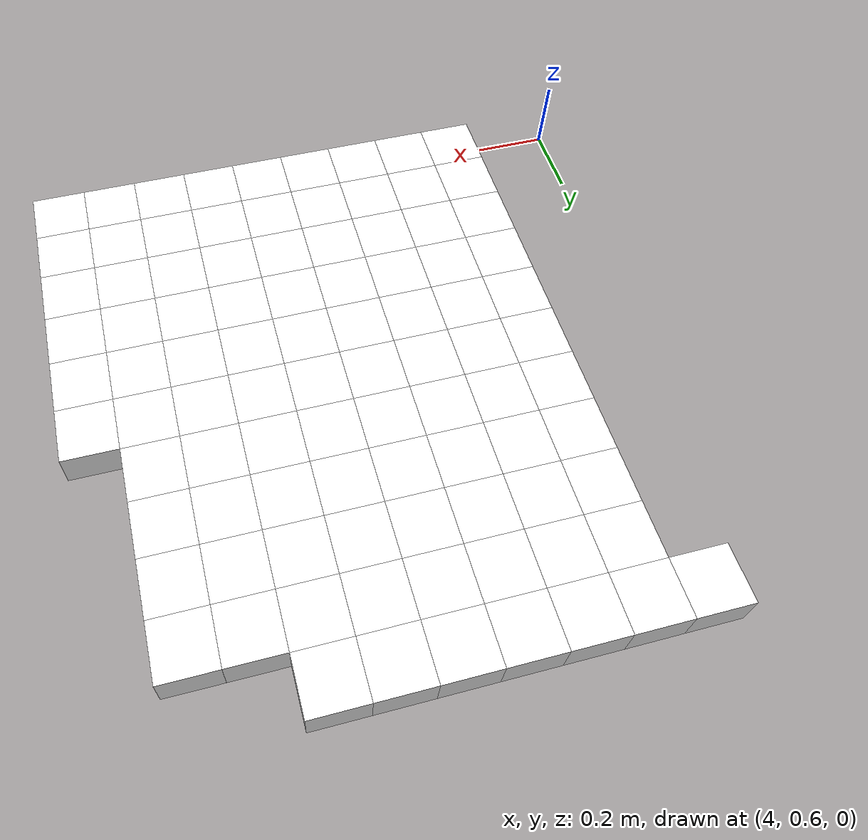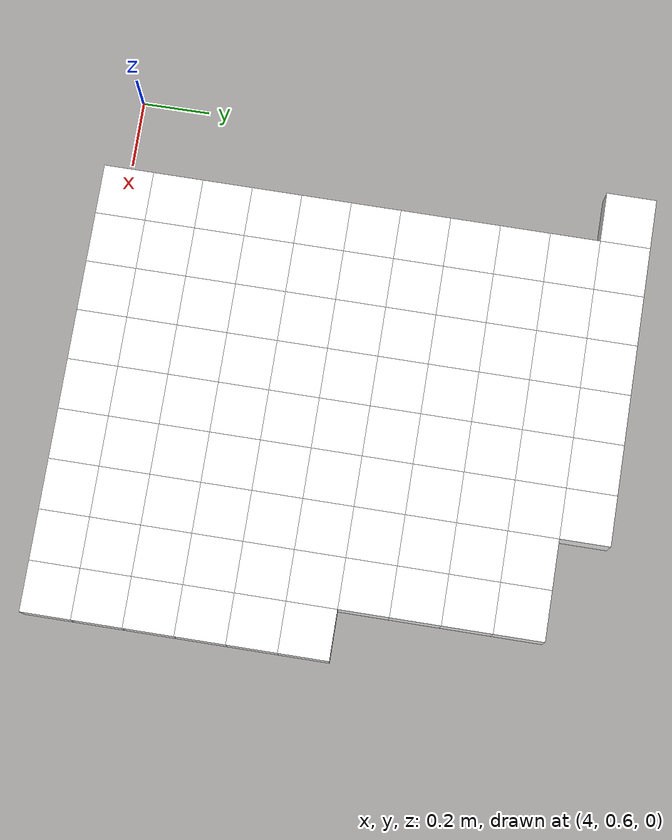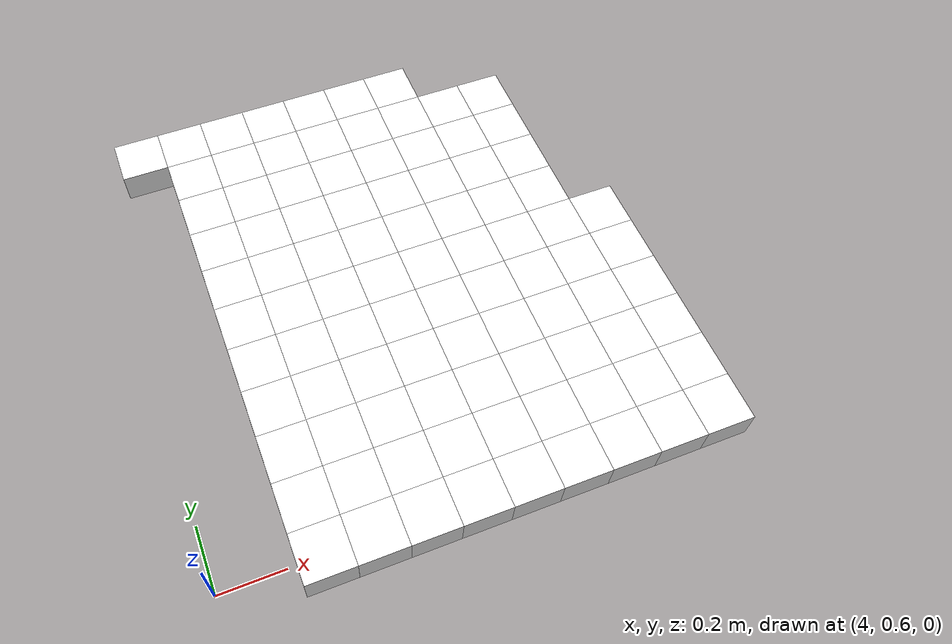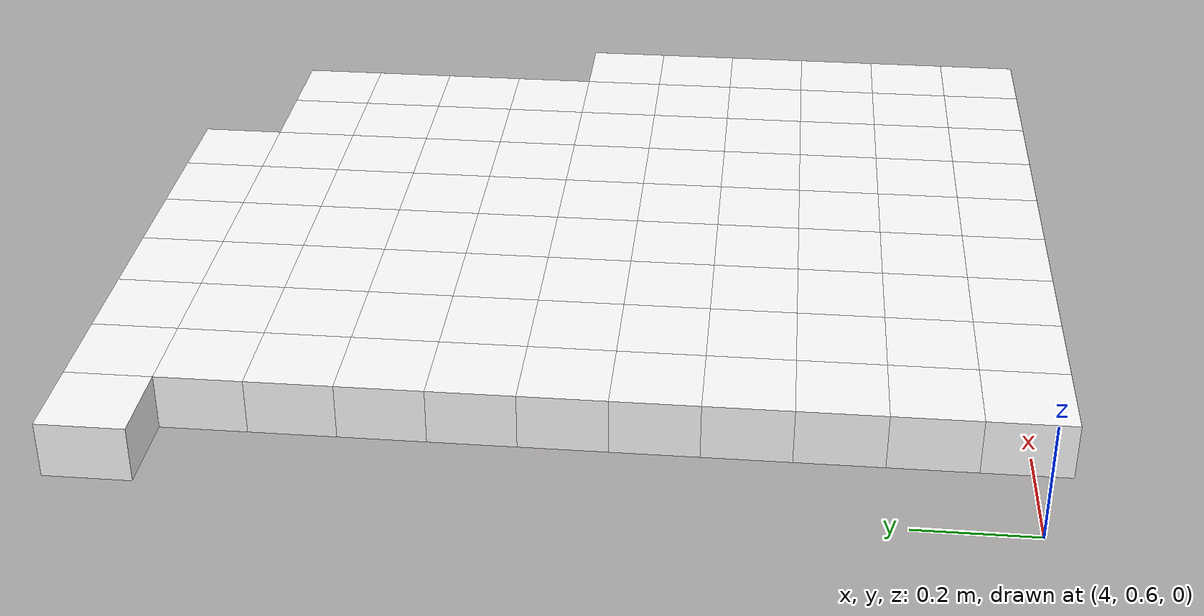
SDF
<sdf version="1.7">
 <world name="default">
  <include><uri>model://sun</uri></include>
  <model name="static_environment">
   <static>true</static>
   <link name="region_802">
    <pose>4.300000000000001 0.6 0.0 0.0 0.0 0.0</pose>
    <collision name="region_802_collision">
     <geometry><box><size>0.15 0.15 0.1</size></box></geometry>
     <surface><friction><ode><mu>1.0</mu><mu2>1.0</mu2></ode></friction></surface>
    </collision>
    <visual name="region_802_visual">
     <geometry><box><size>0.15 0.15 0.1</size></box></geometry>
     <material><ambient>1.0 1.0 1.0 1.0</ambient><diffuse>1.0 1.0 1.0 1.0</diffuse></material>
    </visual>
   </link>
   <link name="region_803">
    <pose>4.450000000000001 0.6 0.0 0.0 0.0 0.0</pose>
    <collision name="region_803_collision">
     <geometry><box><size>0.15 0.15 0.1</size></box></geometry>
     <surface><friction><ode><mu>1.0</mu><mu2>1.0</mu2></ode></friction></surface>
    </collision>
    <visual name="region_803_visual">
     <geometry><box><size>0.15 0.15 0.1</size></box></geometry>
     <material><ambient>1.0 1.0 1.0 1.0</ambient><diffuse>1.0 1.0 1.0 1.0</diffuse></material>
    </visual>
   </link>
   <link name="region_804">
    <pose>4.600000000000001 0.6 0.0 0.0 0.0 0.0</pose>
    <collision name="region_804_collision">
     <geometry><box><size>0.15 0.15 0.1</size></box></geometry>
     <surface><friction><ode><mu>1.0</mu><mu2>1.0</mu2></ode></friction></surface>
    </collision>
    <visual name="region_804_visual">
     <geometry><box><size>0.15 0.15 0.1</size></box></geometry>
     <material><ambient>1.0 1.0 1.0 1.0</ambient><diffuse>1.0 1.0 1.0 1.0</diffuse></material>
    </visual>
   </link>
   <link name="region_805">
    <pose>4.750000000000002 0.6 0.0 0.0 0.0 0.0</pose>
    <collision name="region_805_collision">
     <geometry><box><size>0.15 0.15 0.1</size></box></geometry>
     <surface><friction><ode><mu>1.0</mu><mu2>1.0</mu2></ode></friction></surface>
    </collision>
    <visual name="region_805_visual">
     <geometry><box><size>0.15 0.15 0.1</size></box></geometry>
     <material><ambient>1.0 1.0 1.0 1.0</ambient><diffuse>1.0 1.0 1.0 1.0</diffuse></material>
    </visual>
   </link>
   <link name="region_806">
    <pose>4.900000000000002 0.6 0.0 0.0 0.0 0.0</pose>
    <collision name="region_806_collision">
     <geometry><box><size>0.15 0.15 0.1</size></box></geometry>
     <surface><friction><ode><mu>1.0</mu><mu2>1.0</mu2></ode></friction></surface>
    </collision>
    <visual name="region_806_visual">
     <geometry><box><size>0.15 0.15 0.1</size></box></geometry>
     <material><ambient>1.0 1.0 1.0 1.0</ambient><diffuse>1.0 1.0 1.0 1.0</diffuse></material>
    </visual>
   </link>
   <link name="region_807">
    <pose>5.0500000000000025 0.6 0.0 0.0 0.0 0.0</pose>
    <collision name="region_807_collision">
     <geometry><box><size>0.15 0.15 0.1</size></box></geometry>
     <surface><friction><ode><mu>1.0</mu><mu2>1.0</mu2></ode></friction></surface>
    </collision>
    <visual name="region_807_visual">
     <geometry><box><size>0.15 0.15 0.1</size></box></geometry>
     <material><ambient>1.0 1.0 1.0 1.0</ambient><diffuse>1.0 1.0 1.0 1.0</diffuse></material>
    </visual>
   </link>
   <link name="region_808">
    <pose>5.200000000000003 0.6 0.0 0.0 0.0 0.0</pose>
    <collision name="region_808_collision">
     <geometry><box><size>0.15 0.15 0.1</size></box></geometry>
     <surface><friction><ode><mu>1.0</mu><mu2>1.0</mu2></ode></friction></surface>
    </collision>
    <visual name="region_808_visual">
     <geometry><box><size>0.15 0.15 0.1</size></box></geometry>
     <material><ambient>1.0 1.0 1.0 1.0</ambient><diffuse>1.0 1.0 1.0 1.0</diffuse></material>
    </visual>
   </link>
   <link name="region_809">
    <pose>5.350000000000003 0.6 0.0 0.0 0.0 0.0</pose>
    <collision name="region_809_collision">
     <geometry><box><size>0.15 0.15 0.1</size></box></geometry>
     <surface><friction><ode><mu>1.0</mu><mu2>1.0</mu2></ode></friction></surface>
    </collision>
    <visual name="region_809_visual">
     <geometry><box><size>0.15 0.15 0.1</size></box></geometry>
     <material><ambient>1.0 1.0 1.0 1.0</ambient><diffuse>1.0 1.0 1.0 1.0</diffuse></material>
    </visual>
   </link>
   <link name="region_810">
    <pose>5.5000000000000036 0.6 0.0 0.0 0.0 0.0</pose>
    <collision name="region_810_collision">
     <geometry><box><size>0.15 0.15 0.1</size></box></geometry>
     <surface><friction><ode><mu>1.0</mu><mu2>1.0</mu2></ode></friction></surface>
    </collision>
    <visual name="region_810_visual">
     <geometry><box><size>0.15 0.15 0.1</size></box></geometry>
     <material><ambient>1.0 1.0 1.0 1.0</ambient><diffuse>1.0 1.0 1.0 1.0</diffuse></material>
    </visual>
   </link>
   <link name="region_822">
    <pose>4.300000000000001 0.75 0.0 0.0 0.0 0.0</pose>
    <collision name="region_822_collision">
     <geometry><box><size>0.15 0.15 0.1</size></box></geometry>
     <surface><friction><ode><mu>1.0</mu><mu2>1.0</mu2></ode></friction></surface>
    </collision>
    <visual name="region_822_visual">
     <geometry><box><size>0.15 0.15 0.1</size></box></geometry>
     <material><ambient>1.0 1.0 1.0 1.0</ambient><diffuse>1.0 1.0 1.0 1.0</diffuse></material>
    </visual>
   </link>
   <link name="region_823">
    <pose>4.450000000000001 0.75 0.0 0.0 0.0 0.0</pose>
    <collision name="region_823_collision">
     <geometry><box><size>0.15 0.15 0.1</size></box></geometry>
     <surface><friction><ode><mu>1.0</mu><mu2>1.0</mu2></ode></friction></surface>
    </collision>
    <visual name="region_823_visual">
     <geometry><box><size>0.15 0.15 0.1</size></box></geometry>
     <material><ambient>1.0 1.0 1.0 1.0</ambient><diffuse>1.0 1.0 1.0 1.0</diffuse></material>
    </visual>
   </link>
   <link name="region_824">
    <pose>4.600000000000001 0.75 0.0 0.0 0.0 0.0</pose>
    <collision name="region_824_collision">
     <geometry><box><size>0.15 0.15 0.1</size></box></geometry>
     <surface><friction><ode><mu>1.0</mu><mu2>1.0</mu2></ode></friction></surface>
    </collision>
    <visual name="region_824_visual">
     <geometry><box><size>0.15 0.15 0.1</size></box></geometry>
     <material><ambient>1.0 1.0 1.0 1.0</ambient><diffuse>1.0 1.0 1.0 1.0</diffuse></material>
    </visual>
   </link>
   <link name="region_825">
    <pose>4.750000000000002 0.75 0.0 0.0 0.0 0.0</pose>
    <collision name="region_825_collision">
     <geometry><box><size>0.15 0.15 0.1</size></box></geometry>
     <surface><friction><ode><mu>1.0</mu><mu2>1.0</mu2></ode></friction></surface>
    </collision>
    <visual name="region_825_visual">
     <geometry><box><size>0.15 0.15 0.1</size></box></geometry>
     <material><ambient>1.0 1.0 1.0 1.0</ambient><diffuse>1.0 1.0 1.0 1.0</diffuse></material>
    </visual>
   </link>
   <link name="region_826">
    <pose>4.900000000000002 0.75 0.0 0.0 0.0 0.0</pose>
    <collision name="region_826_collision">
     <geometry><box><size>0.15 0.15 0.1</size></box></geometry>
     <surface><friction><ode><mu>1.0</mu><mu2>1.0</mu2></ode></friction></surface>
    </collision>
    <visual name="region_826_visual">
     <geometry><box><size>0.15 0.15 0.1</size></box></geometry>
     <material><ambient>1.0 1.0 1.0 1.0</ambient><diffuse>1.0 1.0 1.0 1.0</diffuse></material>
    </visual>
   </link>
   <link name="region_827">
    <pose>5.0500000000000025 0.75 0.0 0.0 0.0 0.0</pose>
    <collision name="region_827_collision">
     <geometry><box><size>0.15 0.15 0.1</size></box></geometry>
     <surface><friction><ode><mu>1.0</mu><mu2>1.0</mu2></ode></friction></surface>
    </collision>
    <visual name="region_827_visual">
     <geometry><box><size>0.15 0.15 0.1</size></box></geometry>
     <material><ambient>1.0 1.0 1.0 1.0</ambient><diffuse>1.0 1.0 1.0 1.0</diffuse></material>
    </visual>
   </link>
   <link name="region_828">
    <pose>5.200000000000003 0.75 0.0 0.0 0.0 0.0</pose>
    <collision name="region_828_collision">
     <geometry><box><size>0.15 0.15 0.1</size></box></geometry>
     <surface><friction><ode><mu>1.0</mu><mu2>1.0</mu2></ode></friction></surface>
    </collision>
    <visual name="region_828_visual">
     <geometry><box><size>0.15 0.15 0.1</size></box></geometry>
     <material><ambient>1.0 1.0 1.0 1.0</ambient><diffuse>1.0 1.0 1.0 1.0</diffuse></material>
    </visual>
   </link>
   <link name="region_829">
    <pose>5.350000000000003 0.75 0.0 0.0 0.0 0.0</pose>
    <collision name="region_829_collision">
     <geometry><box><size>0.15 0.15 0.1</size></box></geometry>
     <surface><friction><ode><mu>1.0</mu><mu2>1.0</mu2></ode></friction></surface>
    </collision>
    <visual name="region_829_visual">
     <geometry><box><size>0.15 0.15 0.1</size></box></geometry>
     <material><ambient>1.0 1.0 1.0 1.0</ambient><diffuse>1.0 1.0 1.0 1.0</diffuse></material>
    </visual>
   </link>
   <link name="region_830">
    <pose>5.5000000000000036 0.75 0.0 0.0 0.0 0.0</pose>
    <collision name="region_830_collision">
     <geometry><box><size>0.15 0.15 0.1</size></box></geometry>
     <surface><friction><ode><mu>1.0</mu><mu2>1.0</mu2></ode></friction></surface>
    </collision>
    <visual name="region_830_visual">
     <geometry><box><size>0.15 0.15 0.1</size></box></geometry>
     <material><ambient>1.0 1.0 1.0 1.0</ambient><diffuse>1.0 1.0 1.0 1.0</diffuse></material>
    </visual>
   </link>
   <link name="region_842">
    <pose>4.300000000000001 0.8999999999999999 0.0 0.0 0.0 0.0</pose>
    <collision name="region_842_collision">
     <geometry><box><size>0.15 0.15 0.1</size></box></geometry>
     <surface><friction><ode><mu>1.0</mu><mu2>1.0</mu2></ode></friction></surface>
    </collision>
    <visual name="region_842_visual">
     <geometry><box><size>0.15 0.15 0.1</size></box></geometry>
     <material><ambient>1.0 1.0 1.0 1.0</ambient><diffuse>1.0 1.0 1.0 1.0</diffuse></material>
    </visual>
   </link>
   <link name="region_843">
    <pose>4.450000000000001 0.8999999999999999 0.0 0.0 0.0 0.0</pose>
    <collision name="region_843_collision">
     <geometry><box><size>0.15 0.15 0.1</size></box></geometry>
     <surface><friction><ode><mu>1.0</mu><mu2>1.0</mu2></ode></friction></surface>
    </collision>
    <visual name="region_843_visual">
     <geometry><box><size>0.15 0.15 0.1</size></box></geometry>
     <material><ambient>1.0 1.0 1.0 1.0</ambient><diffuse>1.0 1.0 1.0 1.0</diffuse></material>
    </visual>
   </link>
   <link name="region_844">
    <pose>4.600000000000001 0.8999999999999999 0.0 0.0 0.0 0.0</pose>
    <collision name="region_844_collision">
     <geometry><box><size>0.15 0.15 0.1</size></box></geometry>
     <surface><friction><ode><mu>1.0</mu><mu2>1.0</mu2></ode></friction></surface>
    </collision>
    <visual name="region_844_visual">
     <geometry><box><size>0.15 0.15 0.1</size></box></geometry>
     <material><ambient>1.0 1.0 1.0 1.0</ambient><diffuse>1.0 1.0 1.0 1.0</diffuse></material>
    </visual>
   </link>
   <link name="region_845">
    <pose>4.750000000000002 0.8999999999999999 0.0 0.0 0.0 0.0</pose>
    <collision name="region_845_collision">
     <geometry><box><size>0.15 0.15 0.1</size></box></geometry>
     <surface><friction><ode><mu>1.0</mu><mu2>1.0</mu2></ode></friction></surface>
    </collision>
    <visual name="region_845_visual">
     <geometry><box><size>0.15 0.15 0.1</size></box></geometry>
     <material><ambient>1.0 1.0 1.0 1.0</ambient><diffuse>1.0 1.0 1.0 1.0</diffuse></material>
    </visual>
   </link>
   <link name="region_846">
    <pose>4.900000000000002 0.8999999999999999 0.0 0.0 0.0 0.0</pose>
    <collision name="region_846_collision">
     <geometry><box><size>0.15 0.15 0.1</size></box></geometry>
     <surface><friction><ode><mu>1.0</mu><mu2>1.0</mu2></ode></friction></surface>
    </collision>
    <visual name="region_846_visual">
     <geometry><box><size>0.15 0.15 0.1</size></box></geometry>
     <material><ambient>1.0 1.0 1.0 1.0</ambient><diffuse>1.0 1.0 1.0 1.0</diffuse></material>
    </visual>
   </link>
   <link name="region_847">
    <pose>5.0500000000000025 0.8999999999999999 0.0 0.0 0.0 0.0</pose>
    <collision name="region_847_collision">
     <geometry><box><size>0.15 0.15 0.1</size></box></geometry>
     <surface><friction><ode><mu>1.0</mu><mu2>1.0</mu2></ode></friction></surface>
    </collision>
    <visual name="region_847_visual">
     <geometry><box><size>0.15 0.15 0.1</size></box></geometry>
     <material><ambient>1.0 1.0 1.0 1.0</ambient><diffuse>1.0 1.0 1.0 1.0</diffuse></material>
    </visual>
   </link>
   <link name="region_848">
    <pose>5.200000000000003 0.8999999999999999 0.0 0.0 0.0 0.0</pose>
    <collision name="region_848_collision">
     <geometry><box><size>0.15 0.15 0.1</size></box></geometry>
     <surface><friction><ode><mu>1.0</mu><mu2>1.0</mu2></ode></friction></surface>
    </collision>
    <visual name="region_848_visual">
     <geometry><box><size>0.15 0.15 0.1</size></box></geometry>
     <material><ambient>1.0 1.0 1.0 1.0</ambient><diffuse>1.0 1.0 1.0 1.0</diffuse></material>
    </visual>
   </link>
   <link name="region_849">
    <pose>5.350000000000003 0.8999999999999999 0.0 0.0 0.0 0.0</pose>
    <collision name="region_849_collision">
     <geometry><box><size>0.15 0.15 0.1</size></box></geometry>
     <surface><friction><ode><mu>1.0</mu><mu2>1.0</mu2></ode></friction></surface>
    </collision>
    <visual name="region_849_visual">
     <geometry><box><size>0.15 0.15 0.1</size></box></geometry>
     <material><ambient>1.0 1.0 1.0 1.0</ambient><diffuse>1.0 1.0 1.0 1.0</diffuse></material>
    </visual>
   </link>
   <link name="region_850">
    <pose>5.5000000000000036 0.8999999999999999 0.0 0.0 0.0 0.0</pose>
    <collision name="region_850_collision">
     <geometry><box><size>0.15 0.15 0.1</size></box></geometry>
     <surface><friction><ode><mu>1.0</mu><mu2>1.0</mu2></ode></friction></surface>
    </collision>
    <visual name="region_850_visual">
     <geometry><box><size>0.15 0.15 0.1</size></box></geometry>
     <material><ambient>1.0 1.0 1.0 1.0</ambient><diffuse>1.0 1.0 1.0 1.0</diffuse></material>
    </visual>
   </link>
   <link name="region_862">
    <pose>4.300000000000001 1.0499999999999998 0.0 0.0 0.0 0.0</pose>
    <collision name="region_862_collision">
     <geometry><box><size>0.15 0.15 0.1</size></box></geometry>
     <surface><friction><ode><mu>1.0</mu><mu2>1.0</mu2></ode></friction></surface>
    </collision>
    <visual name="region_862_visual">
     <geometry><box><size>0.15 0.15 0.1</size></box></geometry>
     <material><ambient>1.0 1.0 1.0 1.0</ambient><diffuse>1.0 1.0 1.0 1.0</diffuse></material>
    </visual>
   </link>
   <link name="region_863">
    <pose>4.450000000000001 1.0499999999999998 0.0 0.0 0.0 0.0</pose>
    <collision name="region_863_collision">
     <geometry><box><size>0.15 0.15 0.1</size></box></geometry>
     <surface><friction><ode><mu>1.0</mu><mu2>1.0</mu2></ode></friction></surface>
    </collision>
    <visual name="region_863_visual">
     <geometry><box><size>0.15 0.15 0.1</size></box></geometry>
     <material><ambient>1.0 1.0 1.0 1.0</ambient><diffuse>1.0 1.0 1.0 1.0</diffuse></material>
    </visual>
   </link>
   <link name="region_864">
    <pose>4.600000000000001 1.0499999999999998 0.0 0.0 0.0 0.0</pose>
    <collision name="region_864_collision">
     <geometry><box><size>0.15 0.15 0.1</size></box></geometry>
     <surface><friction><ode><mu>1.0</mu><mu2>1.0</mu2></ode></friction></surface>
    </collision>
    <visual name="region_864_visual">
     <geometry><box><size>0.15 0.15 0.1</size></box></geometry>
     <material><ambient>1.0 1.0 1.0 1.0</ambient><diffuse>1.0 1.0 1.0 1.0</diffuse></material>
    </visual>
   </link>
   <link name="region_865">
    <pose>4.750000000000002 1.0499999999999998 0.0 0.0 0.0 0.0</pose>
    <collision name="region_865_collision">
     <geometry><box><size>0.15 0.15 0.1</size></box></geometry>
     <surface><friction><ode><mu>1.0</mu><mu2>1.0</mu2></ode></friction></surface>
    </collision>
    <visual name="region_865_visual">
     <geometry><box><size>0.15 0.15 0.1</size></box></geometry>
     <material><ambient>1.0 1.0 1.0 1.0</ambient><diffuse>1.0 1.0 1.0 1.0</diffuse></material>
    </visual>
   </link>
   <link name="region_866">
    <pose>4.900000000000002 1.0499999999999998 0.0 0.0 0.0 0.0</pose>
    <collision name="region_866_collision">
     <geometry><box><size>0.15 0.15 0.1</size></box></geometry>
     <surface><friction><ode><mu>1.0</mu><mu2>1.0</mu2></ode></friction></surface>
    </collision>
    <visual name="region_866_visual">
     <geometry><box><size>0.15 0.15 0.1</size></box></geometry>
     <material><ambient>1.0 1.0 1.0 1.0</ambient><diffuse>1.0 1.0 1.0 1.0</diffuse></material>
    </visual>
   </link>
   <link name="region_867">
    <pose>5.0500000000000025 1.0499999999999998 0.0 0.0 0.0 0.0</pose>
    <collision name="region_867_collision">
     <geometry><box><size>0.15 0.15 0.1</size></box></geometry>
     <surface><friction><ode><mu>1.0</mu><mu2>1.0</mu2></ode></friction></surface>
    </collision>
    <visual name="region_867_visual">
     <geometry><box><size>0.15 0.15 0.1</size></box></geometry>
     <material><ambient>1.0 1.0 1.0 1.0</ambient><diffuse>1.0 1.0 1.0 1.0</diffuse></material>
    </visual>
   </link>
   <link name="region_868">
    <pose>5.200000000000003 1.0499999999999998 0.0 0.0 0.0 0.0</pose>
    <collision name="region_868_collision">
     <geometry><box><size>0.15 0.15 0.1</size></box></geometry>
     <surface><friction><ode><mu>1.0</mu><mu2>1.0</mu2></ode></friction></surface>
    </collision>
    <visual name="region_868_visual">
     <geometry><box><size>0.15 0.15 0.1</size></box></geometry>
     <material><ambient>1.0 1.0 1.0 1.0</ambient><diffuse>1.0 1.0 1.0 1.0</diffuse></material>
    </visual>
   </link>
   <link name="region_869">
    <pose>5.350000000000003 1.0499999999999998 0.0 0.0 0.0 0.0</pose>
    <collision name="region_869_collision">
     <geometry><box><size>0.15 0.15 0.1</size></box></geometry>
     <surface><friction><ode><mu>1.0</mu><mu2>1.0</mu2></ode></friction></surface>
    </collision>
    <visual name="region_869_visual">
     <geometry><box><size>0.15 0.15 0.1</size></box></geometry>
     <material><ambient>1.0 1.0 1.0 1.0</ambient><diffuse>1.0 1.0 1.0 1.0</diffuse></material>
    </visual>
   </link>
   <link name="region_870">
    <pose>5.5000000000000036 1.0499999999999998 0.0 0.0 0.0 0.0</pose>
    <collision name="region_870_collision">
     <geometry><box><size>0.15 0.15 0.1</size></box></geometry>
     <surface><friction><ode><mu>1.0</mu><mu2>1.0</mu2></ode></friction></surface>
    </collision>
    <visual name="region_870_visual">
     <geometry><box><size>0.15 0.15 0.1</size></box></geometry>
     <material><ambient>1.0 1.0 1.0 1.0</ambient><diffuse>1.0 1.0 1.0 1.0</diffuse></material>
    </visual>
   </link>
   <link name="region_882">
    <pose>4.300000000000001 1.2 0.0 0.0 0.0 0.0</pose>
    <collision name="region_882_collision">
     <geometry><box><size>0.15 0.15 0.1</size></box></geometry>
     <surface><friction><ode><mu>1.0</mu><mu2>1.0</mu2></ode></friction></surface>
    </collision>
    <visual name="region_882_visual">
     <geometry><box><size>0.15 0.15 0.1</size></box></geometry>
     <material><ambient>1.0 1.0 1.0 1.0</ambient><diffuse>1.0 1.0 1.0 1.0</diffuse></material>
    </visual>
   </link>
   <link name="region_883">
    <pose>4.450000000000001 1.2 0.0 0.0 0.0 0.0</pose>
    <collision name="region_883_collision">
     <geometry><box><size>0.15 0.15 0.1</size></box></geometry>
     <surface><friction><ode><mu>1.0</mu><mu2>1.0</mu2></ode></friction></surface>
    </collision>
    <visual name="region_883_visual">
     <geometry><box><size>0.15 0.15 0.1</size></box></geometry>
     <material><ambient>1.0 1.0 1.0 1.0</ambient><diffuse>1.0 1.0 1.0 1.0</diffuse></material>
    </visual>
   </link>
   <link name="region_884">
    <pose>4.600000000000001 1.2 0.0 0.0 0.0 0.0</pose>
    <collision name="region_884_collision">
     <geometry><box><size>0.15 0.15 0.1</size></box></geometry>
     <surface><friction><ode><mu>1.0</mu><mu2>1.0</mu2></ode></friction></surface>
    </collision>
    <visual name="region_884_visual">
     <geometry><box><size>0.15 0.15 0.1</size></box></geometry>
     <material><ambient>1.0 1.0 1.0 1.0</ambient><diffuse>1.0 1.0 1.0 1.0</diffuse></material>
    </visual>
   </link>
   <link name="region_885">
    <pose>4.750000000000002 1.2 0.0 0.0 0.0 0.0</pose>
    <collision name="region_885_collision">
     <geometry><box><size>0.15 0.15 0.1</size></box></geometry>
     <surface><friction><ode><mu>1.0</mu><mu2>1.0</mu2></ode></friction></surface>
    </collision>
    <visual name="region_885_visual">
     <geometry><box><size>0.15 0.15 0.1</size></box></geometry>
     <material><ambient>1.0 1.0 1.0 1.0</ambient><diffuse>1.0 1.0 1.0 1.0</diffuse></material>
    </visual>
   </link>
   <link name="region_886">
    <pose>4.900000000000002 1.2 0.0 0.0 0.0 0.0</pose>
    <collision name="region_886_collision">
     <geometry><box><size>0.15 0.15 0.1</size></box></geometry>
     <surface><friction><ode><mu>1.0</mu><mu2>1.0</mu2></ode></friction></surface>
    </collision>
    <visual name="region_886_visual">
     <geometry><box><size>0.15 0.15 0.1</size></box></geometry>
     <material><ambient>1.0 1.0 1.0 1.0</ambient><diffuse>1.0 1.0 1.0 1.0</diffuse></material>
    </visual>
   </link>
   <link name="region_887">
    <pose>5.0500000000000025 1.2 0.0 0.0 0.0 0.0</pose>
    <collision name="region_887_collision">
     <geometry><box><size>0.15 0.15 0.1</size></box></geometry>
     <surface><friction><ode><mu>1.0</mu><mu2>1.0</mu2></ode></friction></surface>
    </collision>
    <visual name="region_887_visual">
     <geometry><box><size>0.15 0.15 0.1</size></box></geometry>
     <material><ambient>1.0 1.0 1.0 1.0</ambient><diffuse>1.0 1.0 1.0 1.0</diffuse></material>
    </visual>
   </link>
   <link name="region_888">
    <pose>5.200000000000003 1.2 0.0 0.0 0.0 0.0</pose>
    <collision name="region_888_collision">
     <geometry><box><size>0.15 0.15 0.1</size></box></geometry>
     <surface><friction><ode><mu>1.0</mu><mu2>1.0</mu2></ode></friction></surface>
    </collision>
    <visual name="region_888_visual">
     <geometry><box><size>0.15 0.15 0.1</size></box></geometry>
     <material><ambient>1.0 1.0 1.0 1.0</ambient><diffuse>1.0 1.0 1.0 1.0</diffuse></material>
    </visual>
   </link>
   <link name="region_889">
    <pose>5.350000000000003 1.2 0.0 0.0 0.0 0.0</pose>
    <collision name="region_889_collision">
     <geometry><box><size>0.15 0.15 0.1</size></box></geometry>
     <surface><friction><ode><mu>1.0</mu><mu2>1.0</mu2></ode></friction></surface>
    </collision>
    <visual name="region_889_visual">
     <geometry><box><size>0.15 0.15 0.1</size></box></geometry>
     <material><ambient>1.0 1.0 1.0 1.0</ambient><diffuse>1.0 1.0 1.0 1.0</diffuse></material>
    </visual>
   </link>
   <link name="region_890">
    <pose>5.5000000000000036 1.2 0.0 0.0 0.0 0.0</pose>
    <collision name="region_890_collision">
     <geometry><box><size>0.15 0.15 0.1</size></box></geometry>
     <surface><friction><ode><mu>1.0</mu><mu2>1.0</mu2></ode></friction></surface>
    </collision>
    <visual name="region_890_visual">
     <geometry><box><size>0.15 0.15 0.1</size></box></geometry>
     <material><ambient>1.0 1.0 1.0 1.0</ambient><diffuse>1.0 1.0 1.0 1.0</diffuse></material>
    </visual>
   </link>
   <link name="region_902">
    <pose>4.300000000000001 1.35 0.0 0.0 0.0 0.0</pose>
    <collision name="region_902_collision">
     <geometry><box><size>0.15 0.15 0.1</size></box></geometry>
     <surface><friction><ode><mu>1.0</mu><mu2>1.0</mu2></ode></friction></surface>
    </collision>
    <visual name="region_902_visual">
     <geometry><box><size>0.15 0.15 0.1</size></box></geometry>
     <material><ambient>1.0 1.0 1.0 1.0</ambient><diffuse>1.0 1.0 1.0 1.0</diffuse></material>
    </visual>
   </link>
   <link name="region_903">
    <pose>4.450000000000001 1.35 0.0 0.0 0.0 0.0</pose>
    <collision name="region_903_collision">
     <geometry><box><size>0.15 0.15 0.1</size></box></geometry>
     <surface><friction><ode><mu>1.0</mu><mu2>1.0</mu2></ode></friction></surface>
    </collision>
    <visual name="region_903_visual">
     <geometry><box><size>0.15 0.15 0.1</size></box></geometry>
     <material><ambient>1.0 1.0 1.0 1.0</ambient><diffuse>1.0 1.0 1.0 1.0</diffuse></material>
    </visual>
   </link>
   <link name="region_904">
    <pose>4.600000000000001 1.35 0.0 0.0 0.0 0.0</pose>
    <collision name="region_904_collision">
     <geometry><box><size>0.15 0.15 0.1</size></box></geometry>
     <surface><friction><ode><mu>1.0</mu><mu2>1.0</mu2></ode></friction></surface>
    </collision>
    <visual name="region_904_visual">
     <geometry><box><size>0.15 0.15 0.1</size></box></geometry>
     <material><ambient>1.0 1.0 1.0 1.0</ambient><diffuse>1.0 1.0 1.0 1.0</diffuse></material>
    </visual>
   </link>
   <link name="region_905">
    <pose>4.750000000000002 1.35 0.0 0.0 0.0 0.0</pose>
    <collision name="region_905_collision">
     <geometry><box><size>0.15 0.15 0.1</size></box></geometry>
     <surface><friction><ode><mu>1.0</mu><mu2>1.0</mu2></ode></friction></surface>
    </collision>
    <visual name="region_905_visual">
     <geometry><box><size>0.15 0.15 0.1</size></box></geometry>
     <material><ambient>1.0 1.0 1.0 1.0</ambient><diffuse>1.0 1.0 1.0 1.0</diffuse></material>
    </visual>
   </link>
   <link name="region_906">
    <pose>4.900000000000002 1.35 0.0 0.0 0.0 0.0</pose>
    <collision name="region_906_collision">
     <geometry><box><size>0.15 0.15 0.1</size></box></geometry>
     <surface><friction><ode><mu>1.0</mu><mu2>1.0</mu2></ode></friction></surface>
    </collision>
    <visual name="region_906_visual">
     <geometry><box><size>0.15 0.15 0.1</size></box></geometry>
     <material><ambient>1.0 1.0 1.0 1.0</ambient><diffuse>1.0 1.0 1.0 1.0</diffuse></material>
    </visual>
   </link>
   <link name="region_907">
    <pose>5.0500000000000025 1.35 0.0 0.0 0.0 0.0</pose>
    <collision name="region_907_collision">
     <geometry><box><size>0.15 0.15 0.1</size></box></geometry>
     <surface><friction><ode><mu>1.0</mu><mu2>1.0</mu2></ode></friction></surface>
    </collision>
    <visual name="region_907_visual">
     <geometry><box><size>0.15 0.15 0.1</size></box></geometry>
     <material><ambient>1.0 1.0 1.0 1.0</ambient><diffuse>1.0 1.0 1.0 1.0</diffuse></material>
    </visual>
   </link>
   <link name="region_908">
    <pose>5.200000000000003 1.35 0.0 0.0 0.0 0.0</pose>
    <collision name="region_908_collision">
     <geometry><box><size>0.15 0.15 0.1</size></box></geometry>
     <surface><friction><ode><mu>1.0</mu><mu2>1.0</mu2></ode></friction></surface>
    </collision>
    <visual name="region_908_visual">
     <geometry><box><size>0.15 0.15 0.1</size></box></geometry>
     <material><ambient>1.0 1.0 1.0 1.0</ambient><diffuse>1.0 1.0 1.0 1.0</diffuse></material>
    </visual>
   </link>
   <link name="region_909">
    <pose>5.350000000000003 1.35 0.0 0.0 0.0 0.0</pose>
    <collision name="region_909_collision">
     <geometry><box><size>0.15 0.15 0.1</size></box></geometry>
     <surface><friction><ode><mu>1.0</mu><mu2>1.0</mu2></ode></friction></surface>
    </collision>
    <visual name="region_909_visual">
     <geometry><box><size>0.15 0.15 0.1</size></box></geometry>
     <material><ambient>1.0 1.0 1.0 1.0</ambient><diffuse>1.0 1.0 1.0 1.0</diffuse></material>
    </visual>
   </link>
   <link name="region_910">
    <pose>5.5000000000000036 1.35 0.0 0.0 0.0 0.0</pose>
    <collision name="region_910_collision">
     <geometry><box><size>0.15 0.15 0.1</size></box></geometry>
     <surface><friction><ode><mu>1.0</mu><mu2>1.0</mu2></ode></friction></surface>
    </collision>
    <visual name="region_910_visual">
     <geometry><box><size>0.15 0.15 0.1</size></box></geometry>
     <material><ambient>1.0 1.0 1.0 1.0</ambient><diffuse>1.0 1.0 1.0 1.0</diffuse></material>
    </visual>
   </link>
   <link name="region_922">
    <pose>4.300000000000001 1.5 0.0 0.0 0.0 0.0</pose>
    <collision name="region_922_collision">
     <geometry><box><size>0.15 0.15 0.1</size></box></geometry>
     <surface><friction><ode><mu>1.0</mu><mu2>1.0</mu2></ode></friction></surface>
    </collision>
    <visual name="region_922_visual">
     <geometry><box><size>0.15 0.15 0.1</size></box></geometry>
     <material><ambient>1.0 1.0 1.0 1.0</ambient><diffuse>1.0 1.0 1.0 1.0</diffuse></material>
    </visual>
   </link>
   <link name="region_923">
    <pose>4.450000000000001 1.5 0.0 0.0 0.0 0.0</pose>
    <collision name="region_923_collision">
     <geometry><box><size>0.15 0.15 0.1</size></box></geometry>
     <surface><friction><ode><mu>1.0</mu><mu2>1.0</mu2></ode></friction></surface>
    </collision>
    <visual name="region_923_visual">
     <geometry><box><size>0.15 0.15 0.1</size></box></geometry>
     <material><ambient>1.0 1.0 1.0 1.0</ambient><diffuse>1.0 1.0 1.0 1.0</diffuse></material>
    </visual>
   </link>
   <link name="region_924">
    <pose>4.600000000000001 1.5 0.0 0.0 0.0 0.0</pose>
    <collision name="region_924_collision">
     <geometry><box><size>0.15 0.15 0.1</size></box></geometry>
     <surface><friction><ode><mu>1.0</mu><mu2>1.0</mu2></ode></friction></surface>
    </collision>
    <visual name="region_924_visual">
     <geometry><box><size>0.15 0.15 0.1</size></box></geometry>
     <material><ambient>1.0 1.0 1.0 1.0</ambient><diffuse>1.0 1.0 1.0 1.0</diffuse></material>
    </visual>
   </link>
   <link name="region_925">
    <pose>4.750000000000002 1.5 0.0 0.0 0.0 0.0</pose>
    <collision name="region_925_collision">
     <geometry><box><size>0.15 0.15 0.1</size></box></geometry>
     <surface><friction><ode><mu>1.0</mu><mu2>1.0</mu2></ode></friction></surface>
    </collision>
    <visual name="region_925_visual">
     <geometry><box><size>0.15 0.15 0.1</size></box></geometry>
     <material><ambient>1.0 1.0 1.0 1.0</ambient><diffuse>1.0 1.0 1.0 1.0</diffuse></material>
    </visual>
   </link>
   <link name="region_926">
    <pose>4.900000000000002 1.5 0.0 0.0 0.0 0.0</pose>
    <collision name="region_926_collision">
     <geometry><box><size>0.15 0.15 0.1</size></box></geometry>
     <surface><friction><ode><mu>1.0</mu><mu2>1.0</mu2></ode></friction></surface>
    </collision>
    <visual name="region_926_visual">
     <geometry><box><size>0.15 0.15 0.1</size></box></geometry>
     <material><ambient>1.0 1.0 1.0 1.0</ambient><diffuse>1.0 1.0 1.0 1.0</diffuse></material>
    </visual>
   </link>
   <link name="region_927">
    <pose>5.0500000000000025 1.5 0.0 0.0 0.0 0.0</pose>
    <collision name="region_927_collision">
     <geometry><box><size>0.15 0.15 0.1</size></box></geometry>
     <surface><friction><ode><mu>1.0</mu><mu2>1.0</mu2></ode></friction></surface>
    </collision>
    <visual name="region_927_visual">
     <geometry><box><size>0.15 0.15 0.1</size></box></geometry>
     <material><ambient>1.0 1.0 1.0 1.0</ambient><diffuse>1.0 1.0 1.0 1.0</diffuse></material>
    </visual>
   </link>
   <link name="region_928">
    <pose>5.200000000000003 1.5 0.0 0.0 0.0 0.0</pose>
    <collision name="region_928_collision">
     <geometry><box><size>0.15 0.15 0.1</size></box></geometry>
     <surface><friction><ode><mu>1.0</mu><mu2>1.0</mu2></ode></friction></surface>
    </collision>
    <visual name="region_928_visual">
     <geometry><box><size>0.15 0.15 0.1</size></box></geometry>
     <material><ambient>1.0 1.0 1.0 1.0</ambient><diffuse>1.0 1.0 1.0 1.0</diffuse></material>
    </visual>
   </link>
   <link name="region_929">
    <pose>5.350000000000003 1.5 0.0 0.0 0.0 0.0</pose>
    <collision name="region_929_collision">
     <geometry><box><size>0.15 0.15 0.1</size></box></geometry>
     <surface><friction><ode><mu>1.0</mu><mu2>1.0</mu2></ode></friction></surface>
    </collision>
    <visual name="region_929_visual">
     <geometry><box><size>0.15 0.15 0.1</size></box></geometry>
     <material><ambient>1.0 1.0 1.0 1.0</ambient><diffuse>1.0 1.0 1.0 1.0</diffuse></material>
    </visual>
   </link>
   <link name="region_942">
    <pose>4.300000000000001 1.65 0.0 0.0 0.0 0.0</pose>
    <collision name="region_942_collision">
     <geometry><box><size>0.15 0.15 0.1</size></box></geometry>
     <surface><friction><ode><mu>1.0</mu><mu2>1.0</mu2></ode></friction></surface>
    </collision>
    <visual name="region_942_visual">
     <geometry><box><size>0.15 0.15 0.1</size></box></geometry>
     <material><ambient>1.0 1.0 1.0 1.0</ambient><diffuse>1.0 1.0 1.0 1.0</diffuse></material>
    </visual>
   </link>
   <link name="region_943">
    <pose>4.450000000000001 1.65 0.0 0.0 0.0 0.0</pose>
    <collision name="region_943_collision">
     <geometry><box><size>0.15 0.15 0.1</size></box></geometry>
     <surface><friction><ode><mu>1.0</mu><mu2>1.0</mu2></ode></friction></surface>
    </collision>
    <visual name="region_943_visual">
     <geometry><box><size>0.15 0.15 0.1</size></box></geometry>
     <material><ambient>1.0 1.0 1.0 1.0</ambient><diffuse>1.0 1.0 1.0 1.0</diffuse></material>
    </visual>
   </link>
   <link name="region_944">
    <pose>4.600000000000001 1.65 0.0 0.0 0.0 0.0</pose>
    <collision name="region_944_collision">
     <geometry><box><size>0.15 0.15 0.1</size></box></geometry>
     <surface><friction><ode><mu>1.0</mu><mu2>1.0</mu2></ode></friction></surface>
    </collision>
    <visual name="region_944_visual">
     <geometry><box><size>0.15 0.15 0.1</size></box></geometry>
     <material><ambient>1.0 1.0 1.0 1.0</ambient><diffuse>1.0 1.0 1.0 1.0</diffuse></material>
    </visual>
   </link>
   <link name="region_945">
    <pose>4.750000000000002 1.65 0.0 0.0 0.0 0.0</pose>
    <collision name="region_945_collision">
     <geometry><box><size>0.15 0.15 0.1</size></box></geometry>
     <surface><friction><ode><mu>1.0</mu><mu2>1.0</mu2></ode></friction></surface>
    </collision>
    <visual name="region_945_visual">
     <geometry><box><size>0.15 0.15 0.1</size></box></geometry>
     <material><ambient>1.0 1.0 1.0 1.0</ambient><diffuse>1.0 1.0 1.0 1.0</diffuse></material>
    </visual>
   </link>
   <link name="region_946">
    <pose>4.900000000000002 1.65 0.0 0.0 0.0 0.0</pose>
    <collision name="region_946_collision">
     <geometry><box><size>0.15 0.15 0.1</size></box></geometry>
     <surface><friction><ode><mu>1.0</mu><mu2>1.0</mu2></ode></friction></surface>
    </collision>
    <visual name="region_946_visual">
     <geometry><box><size>0.15 0.15 0.1</size></box></geometry>
     <material><ambient>1.0 1.0 1.0 1.0</ambient><diffuse>1.0 1.0 1.0 1.0</diffuse></material>
    </visual>
   </link>
   <link name="region_947">
    <pose>5.0500000000000025 1.65 0.0 0.0 0.0 0.0</pose>
    <collision name="region_947_collision">
     <geometry><box><size>0.15 0.15 0.1</size></box></geometry>
     <surface><friction><ode><mu>1.0</mu><mu2>1.0</mu2></ode></friction></surface>
    </collision>
    <visual name="region_947_visual">
     <geometry><box><size>0.15 0.15 0.1</size></box></geometry>
     <material><ambient>1.0 1.0 1.0 1.0</ambient><diffuse>1.0 1.0 1.0 1.0</diffuse></material>
    </visual>
   </link>
   <link name="region_948">
    <pose>5.200000000000003 1.65 0.0 0.0 0.0 0.0</pose>
    <collision name="region_948_collision">
     <geometry><box><size>0.15 0.15 0.1</size></box></geometry>
     <surface><friction><ode><mu>1.0</mu><mu2>1.0</mu2></ode></friction></surface>
    </collision>
    <visual name="region_948_visual">
     <geometry><box><size>0.15 0.15 0.1</size></box></geometry>
     <material><ambient>1.0 1.0 1.0 1.0</ambient><diffuse>1.0 1.0 1.0 1.0</diffuse></material>
    </visual>
   </link>
   <link name="region_949">
    <pose>5.350000000000003 1.65 0.0 0.0 0.0 0.0</pose>
    <collision name="region_949_collision">
     <geometry><box><size>0.15 0.15 0.1</size></box></geometry>
     <surface><friction><ode><mu>1.0</mu><mu2>1.0</mu2></ode></friction></surface>
    </collision>
    <visual name="region_949_visual">
     <geometry><box><size>0.15 0.15 0.1</size></box></geometry>
     <material><ambient>1.0 1.0 1.0 1.0</ambient><diffuse>1.0 1.0 1.0 1.0</diffuse></material>
    </visual>
   </link>
   <link name="region_962">
    <pose>4.300000000000001 1.7999999999999998 0.0 0.0 0.0 0.0</pose>
    <collision name="region_962_collision">
     <geometry><box><size>0.15 0.15 0.1</size></box></geometry>
     <surface><friction><ode><mu>1.0</mu><mu2>1.0</mu2></ode></friction></surface>
    </collision>
    <visual name="region_962_visual">
     <geometry><box><size>0.15 0.15 0.1</size></box></geometry>
     <material><ambient>1.0 1.0 1.0 1.0</ambient><diffuse>1.0 1.0 1.0 1.0</diffuse></material>
    </visual>
   </link>
   <link name="region_963">
    <pose>4.450000000000001 1.7999999999999998 0.0 0.0 0.0 0.0</pose>
    <collision name="region_963_collision">
     <geometry><box><size>0.15 0.15 0.1</size></box></geometry>
     <surface><friction><ode><mu>1.0</mu><mu2>1.0</mu2></ode></friction></surface>
    </collision>
    <visual name="region_963_visual">
     <geometry><box><size>0.15 0.15 0.1</size></box></geometry>
     <material><ambient>1.0 1.0 1.0 1.0</ambient><diffuse>1.0 1.0 1.0 1.0</diffuse></material>
    </visual>
   </link>
   <link name="region_964">
    <pose>4.600000000000001 1.7999999999999998 0.0 0.0 0.0 0.0</pose>
    <collision name="region_964_collision">
     <geometry><box><size>0.15 0.15 0.1</size></box></geometry>
     <surface><friction><ode><mu>1.0</mu><mu2>1.0</mu2></ode></friction></surface>
    </collision>
    <visual name="region_964_visual">
     <geometry><box><size>0.15 0.15 0.1</size></box></geometry>
     <material><ambient>1.0 1.0 1.0 1.0</ambient><diffuse>1.0 1.0 1.0 1.0</diffuse></material>
    </visual>
   </link>
   <link name="region_965">
    <pose>4.750000000000002 1.7999999999999998 0.0 0.0 0.0 0.0</pose>
    <collision name="region_965_collision">
     <geometry><box><size>0.15 0.15 0.1</size></box></geometry>
     <surface><friction><ode><mu>1.0</mu><mu2>1.0</mu2></ode></friction></surface>
    </collision>
    <visual name="region_965_visual">
     <geometry><box><size>0.15 0.15 0.1</size></box></geometry>
     <material><ambient>1.0 1.0 1.0 1.0</ambient><diffuse>1.0 1.0 1.0 1.0</diffuse></material>
    </visual>
   </link>
   <link name="region_966">
    <pose>4.900000000000002 1.7999999999999998 0.0 0.0 0.0 0.0</pose>
    <collision name="region_966_collision">
     <geometry><box><size>0.15 0.15 0.1</size></box></geometry>
     <surface><friction><ode><mu>1.0</mu><mu2>1.0</mu2></ode></friction></surface>
    </collision>
    <visual name="region_966_visual">
     <geometry><box><size>0.15 0.15 0.1</size></box></geometry>
     <material><ambient>1.0 1.0 1.0 1.0</ambient><diffuse>1.0 1.0 1.0 1.0</diffuse></material>
    </visual>
   </link>
   <link name="region_967">
    <pose>5.0500000000000025 1.7999999999999998 0.0 0.0 0.0 0.0</pose>
    <collision name="region_967_collision">
     <geometry><box><size>0.15 0.15 0.1</size></box></geometry>
     <surface><friction><ode><mu>1.0</mu><mu2>1.0</mu2></ode></friction></surface>
    </collision>
    <visual name="region_967_visual">
     <geometry><box><size>0.15 0.15 0.1</size></box></geometry>
     <material><ambient>1.0 1.0 1.0 1.0</ambient><diffuse>1.0 1.0 1.0 1.0</diffuse></material>
    </visual>
   </link>
   <link name="region_968">
    <pose>5.200000000000003 1.7999999999999998 0.0 0.0 0.0 0.0</pose>
    <collision name="region_968_collision">
     <geometry><box><size>0.15 0.15 0.1</size></box></geometry>
     <surface><friction><ode><mu>1.0</mu><mu2>1.0</mu2></ode></friction></surface>
    </collision>
    <visual name="region_968_visual">
     <geometry><box><size>0.15 0.15 0.1</size></box></geometry>
     <material><ambient>1.0 1.0 1.0 1.0</ambient><diffuse>1.0 1.0 1.0 1.0</diffuse></material>
    </visual>
   </link>
   <link name="region_969">
    <pose>5.350000000000003 1.7999999999999998 0.0 0.0 0.0 0.0</pose>
    <collision name="region_969_collision">
     <geometry><box><size>0.15 0.15 0.1</size></box></geometry>
     <surface><friction><ode><mu>1.0</mu><mu2>1.0</mu2></ode></friction></surface>
    </collision>
    <visual name="region_969_visual">
     <geometry><box><size>0.15 0.15 0.1</size></box></geometry>
     <material><ambient>1.0 1.0 1.0 1.0</ambient><diffuse>1.0 1.0 1.0 1.0</diffuse></material>
    </visual>
   </link>
   <link name="region_982">
    <pose>4.300000000000001 1.9499999999999997 0.0 0.0 0.0 0.0</pose>
    <collision name="region_982_collision">
     <geometry><box><size>0.15 0.15 0.1</size></box></geometry>
     <surface><friction><ode><mu>1.0</mu><mu2>1.0</mu2></ode></friction></surface>
    </collision>
    <visual name="region_982_visual">
     <geometry><box><size>0.15 0.15 0.1</size></box></geometry>
     <material><ambient>1.0 1.0 1.0 1.0</ambient><diffuse>1.0 1.0 1.0 1.0</diffuse></material>
    </visual>
   </link>
   <link name="region_983">
    <pose>4.450000000000001 1.9499999999999997 0.0 0.0 0.0 0.0</pose>
    <collision name="region_983_collision">
     <geometry><box><size>0.15 0.15 0.1</size></box></geometry>
     <surface><friction><ode><mu>1.0</mu><mu2>1.0</mu2></ode></friction></surface>
    </collision>
    <visual name="region_983_visual">
     <geometry><box><size>0.15 0.15 0.1</size></box></geometry>
     <material><ambient>1.0 1.0 1.0 1.0</ambient><diffuse>1.0 1.0 1.0 1.0</diffuse></material>
    </visual>
   </link>
   <link name="region_984">
    <pose>4.600000000000001 1.9499999999999997 0.0 0.0 0.0 0.0</pose>
    <collision name="region_984_collision">
     <geometry><box><size>0.15 0.15 0.1</size></box></geometry>
     <surface><friction><ode><mu>1.0</mu><mu2>1.0</mu2></ode></friction></surface>
    </collision>
    <visual name="region_984_visual">
     <geometry><box><size>0.15 0.15 0.1</size></box></geometry>
     <material><ambient>1.0 1.0 1.0 1.0</ambient><diffuse>1.0 1.0 1.0 1.0</diffuse></material>
    </visual>
   </link>
   <link name="region_985">
    <pose>4.750000000000002 1.9499999999999997 0.0 0.0 0.0 0.0</pose>
    <collision name="region_985_collision">
     <geometry><box><size>0.15 0.15 0.1</size></box></geometry>
     <surface><friction><ode><mu>1.0</mu><mu2>1.0</mu2></ode></friction></surface>
    </collision>
    <visual name="region_985_visual">
     <geometry><box><size>0.15 0.15 0.1</size></box></geometry>
     <material><ambient>1.0 1.0 1.0 1.0</ambient><diffuse>1.0 1.0 1.0 1.0</diffuse></material>
    </visual>
   </link>
   <link name="region_986">
    <pose>4.900000000000002 1.9499999999999997 0.0 0.0 0.0 0.0</pose>
    <collision name="region_986_collision">
     <geometry><box><size>0.15 0.15 0.1</size></box></geometry>
     <surface><friction><ode><mu>1.0</mu><mu2>1.0</mu2></ode></friction></surface>
    </collision>
    <visual name="region_986_visual">
     <geometry><box><size>0.15 0.15 0.1</size></box></geometry>
     <material><ambient>1.0 1.0 1.0 1.0</ambient><diffuse>1.0 1.0 1.0 1.0</diffuse></material>
    </visual>
   </link>
   <link name="region_987">
    <pose>5.0500000000000025 1.9499999999999997 0.0 0.0 0.0 0.0</pose>
    <collision name="region_987_collision">
     <geometry><box><size>0.15 0.15 0.1</size></box></geometry>
     <surface><friction><ode><mu>1.0</mu><mu2>1.0</mu2></ode></friction></surface>
    </collision>
    <visual name="region_987_visual">
     <geometry><box><size>0.15 0.15 0.1</size></box></geometry>
     <material><ambient>1.0 1.0 1.0 1.0</ambient><diffuse>1.0 1.0 1.0 1.0</diffuse></material>
    </visual>
   </link>
   <link name="region_988">
    <pose>5.200000000000003 1.9499999999999997 0.0 0.0 0.0 0.0</pose>
    <collision name="region_988_collision">
     <geometry><box><size>0.15 0.15 0.1</size></box></geometry>
     <surface><friction><ode><mu>1.0</mu><mu2>1.0</mu2></ode></friction></surface>
    </collision>
    <visual name="region_988_visual">
     <geometry><box><size>0.15 0.15 0.1</size></box></geometry>
     <material><ambient>1.0 1.0 1.0 1.0</ambient><diffuse>1.0 1.0 1.0 1.0</diffuse></material>
    </visual>
   </link>
   <link name="region_989">
    <pose>5.350000000000003 1.9499999999999997 0.0 0.0 0.0 0.0</pose>
    <collision name="region_989_collision">
     <geometry><box><size>0.15 0.15 0.1</size></box></geometry>
     <surface><friction><ode><mu>1.0</mu><mu2>1.0</mu2></ode></friction></surface>
    </collision>
    <visual name="region_989_visual">
     <geometry><box><size>0.15 0.15 0.1</size></box></geometry>
     <material><ambient>1.0 1.0 1.0 1.0</ambient><diffuse>1.0 1.0 1.0 1.0</diffuse></material>
    </visual>
   </link>
   <link name="region_1001">
    <pose>4.15 2.0999999999999996 0.0 0.0 0.0 0.0</pose>
    <collision name="region_1001_collision">
     <geometry><box><size>0.15 0.15 0.1</size></box></geometry>
     <surface><friction><ode><mu>1.0</mu><mu2>1.0</mu2></ode></friction></surface>
    </collision>
    <visual name="region_1001_visual">
     <geometry><box><size>0.15 0.15 0.1</size></box></geometry>
     <material><ambient>1.0 1.0 1.0 1.0</ambient><diffuse>1.0 1.0 1.0 1.0</diffuse></material>
    </visual>
   </link>
   <link name="region_1002">
    <pose>4.300000000000001 2.0999999999999996 0.0 0.0 0.0 0.0</pose>
    <collision name="region_1002_collision">
     <geometry><box><size>0.15 0.15 0.1</size></box></geometry>
     <surface><friction><ode><mu>1.0</mu><mu2>1.0</mu2></ode></friction></surface>
    </collision>
    <visual name="region_1002_visual">
     <geometry><box><size>0.15 0.15 0.1</size></box></geometry>
     <material><ambient>1.0 1.0 1.0 1.0</ambient><diffuse>1.0 1.0 1.0 1.0</diffuse></material>
    </visual>
   </link>
   <link name="region_1003">
    <pose>4.450000000000001 2.0999999999999996 0.0 0.0 0.0 0.0</pose>
    <collision name="region_1003_collision">
     <geometry><box><size>0.15 0.15 0.1</size></box></geometry>
     <surface><friction><ode><mu>1.0</mu><mu2>1.0</mu2></ode></friction></surface>
    </collision>
    <visual name="region_1003_visual">
     <geometry><box><size>0.15 0.15 0.1</size></box></geometry>
     <material><ambient>1.0 1.0 1.0 1.0</ambient><diffuse>1.0 1.0 1.0 1.0</diffuse></material>
    </visual>
   </link>
   <link name="region_1004">
    <pose>4.600000000000001 2.0999999999999996 0.0 0.0 0.0 0.0</pose>
    <collision name="region_1004_collision">
     <geometry><box><size>0.15 0.15 0.1</size></box></geometry>
     <surface><friction><ode><mu>1.0</mu><mu2>1.0</mu2></ode></friction></surface>
    </collision>
    <visual name="region_1004_visual">
     <geometry><box><size>0.15 0.15 0.1</size></box></geometry>
     <material><ambient>1.0 1.0 1.0 1.0</ambient><diffuse>1.0 1.0 1.0 1.0</diffuse></material>
    </visual>
   </link>
   <link name="region_1005">
    <pose>4.750000000000002 2.0999999999999996 0.0 0.0 0.0 0.0</pose>
    <collision name="region_1005_collision">
     <geometry><box><size>0.15 0.15 0.1</size></box></geometry>
     <surface><friction><ode><mu>1.0</mu><mu2>1.0</mu2></ode></friction></surface>
    </collision>
    <visual name="region_1005_visual">
     <geometry><box><size>0.15 0.15 0.1</size></box></geometry>
     <material><ambient>1.0 1.0 1.0 1.0</ambient><diffuse>1.0 1.0 1.0 1.0</diffuse></material>
    </visual>
   </link>
   <link name="region_1006">
    <pose>4.900000000000002 2.0999999999999996 0.0 0.0 0.0 0.0</pose>
    <collision name="region_1006_collision">
     <geometry><box><size>0.15 0.15 0.1</size></box></geometry>
     <surface><friction><ode><mu>1.0</mu><mu2>1.0</mu2></ode></friction></surface>
    </collision>
    <visual name="region_1006_visual">
     <geometry><box><size>0.15 0.15 0.1</size></box></geometry>
     <material><ambient>1.0 1.0 1.0 1.0</ambient><diffuse>1.0 1.0 1.0 1.0</diffuse></material>
    </visual>
   </link>
   <link name="region_1007">
    <pose>5.0500000000000025 2.0999999999999996 0.0 0.0 0.0 0.0</pose>
    <collision name="region_1007_collision">
     <geometry><box><size>0.15 0.15 0.1</size></box></geometry>
     <surface><friction><ode><mu>1.0</mu><mu2>1.0</mu2></ode></friction></surface>
    </collision>
    <visual name="region_1007_visual">
     <geometry><box><size>0.15 0.15 0.1</size></box></geometry>
     <material><ambient>1.0 1.0 1.0 1.0</ambient><diffuse>1.0 1.0 1.0 1.0</diffuse></material>
    </visual>
   </link>
  </model>
 </world>
</sdf>
